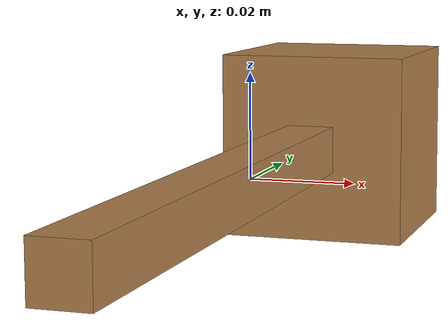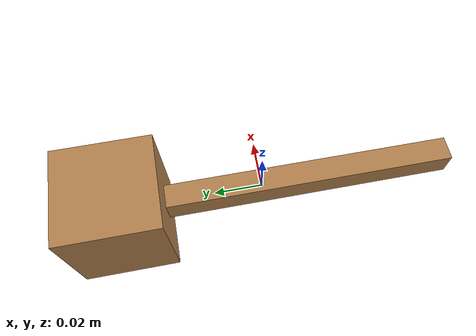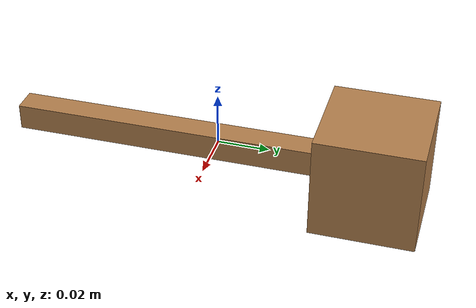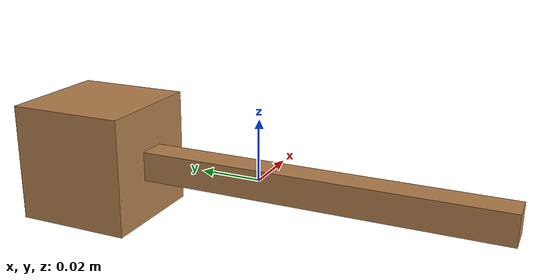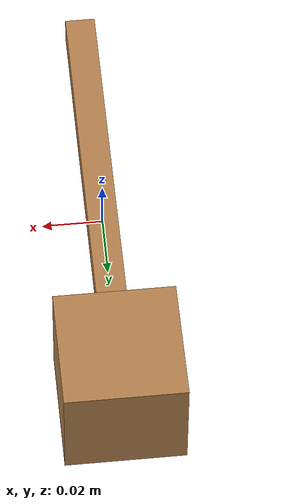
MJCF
<?xml version='1.0' encoding='utf-8'?>
<mujoco model="needle">
  <asset>
    <texture type="cube" name="needle_obj_darkwood" file="./dark-wood.png" />
    <material name="needle_obj_darkwood_mat" texture="needle_obj_darkwood" specular="0.4" shininess="0.1" />
  </asset>
  <worldbody>
    <body name="needle_obj_root">
      <geom name="needle_obj_needle" size="0.005 0.06 0.005" pos="0 -0.02 0" type="box" friction="0.3" density="100" material="needle_obj_darkwood_mat"/>
      <geom name="needle_obj_handle" size="0.02 0.02 0.02" pos="0 0.06 0" type="box" density="100" material="needle_obj_darkwood_mat"/>
    </body>
  </worldbody>
</mujoco>
